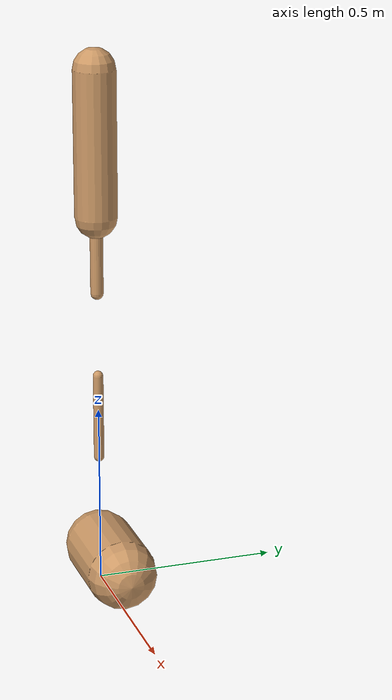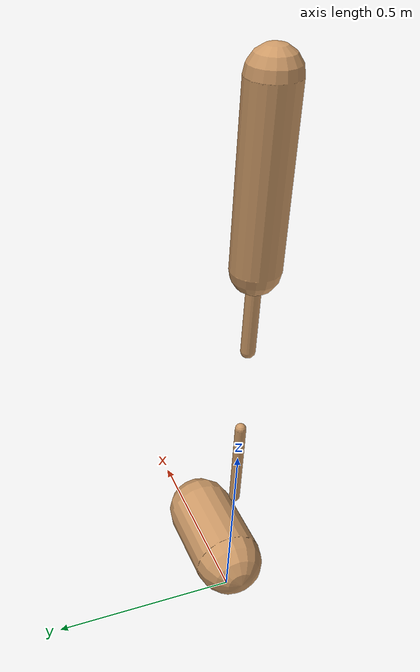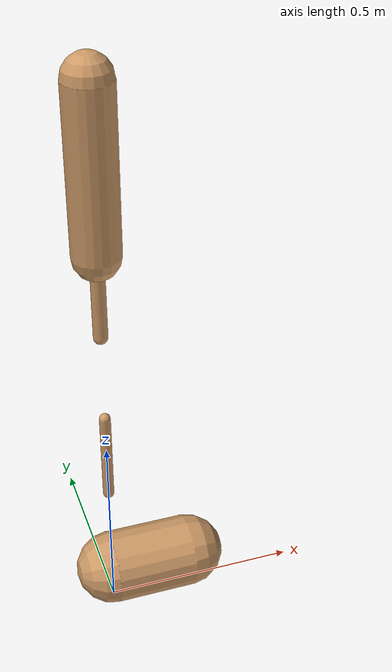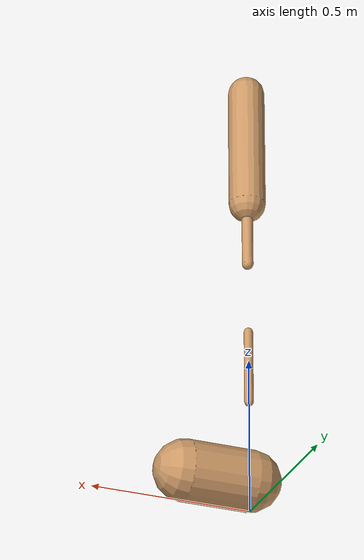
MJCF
<mujoco model="walker2d">
  <compiler angle="degree" coordinate="global" inertiafromgeom="true" />
  <default>
    <joint armature="0.01" damping=".1" limited="true" />
    <geom conaffinity="0" condim="3" contype="1" density="1000" friction="0.8 .1 .1" rgba="0.8 0.6 .4 1" />
  </default>
  <option integrator="RK4" timestep="0.002" />
  <worldbody>

    <body name="torso" pos="0 0 -0.5002291466418785">
      <joint armature="0" axis="1 0 0" damping="0" limited="false" name="ignorex" pos="0 0 0" stiffness="0" type="slide" />
      <joint armature="0" axis="0 0 1" damping="0" limited="false" name="ignorez" pos="0 0 0" ref="1.25" stiffness="0" type="slide" />
      <joint armature="0" axis="0 1 0" damping="0" limited="false" name="ignorey" pos="0 0 0" stiffness="0" type="hinge" />
      <geom fromto="0 0 1.45 0 0 1.05" name="torso_geom" size="0.05780219058891831" type="capsule" />
      <body name="thigh">
        <joint axis="0 -1 0" name="thigh_joint" pos="0 0 1.05" range="-150 0" type="hinge" />
        <geom fromto="0.0 0.0 1.05 0.0 0.0 0.8369506484093109" name="thigh_geom" size="0.01759238343487704" type="capsule" />
        <body name="leg" pos="0.0 0.0 0.2369506484093109">
          <joint axis="0 -1 0" name="leg_joint" pos="0 0 0.6" range="-150 0" type="hinge" />
          <geom fromto="0.0 0.0 0.6 0.0 0.0 0.36327849823256764" name="leg_geom" size="0.014073906747901632" type="capsule" />
          <body name="foot" pos="0.0 0.0 0.26327849823256766">
            <joint axis="0 -1 0" name="foot_joint" pos="0 0 0.1" range="-45 45" type="hinge" />
            <geom fromto="-0.0 0.0 0.1 0.20892047386464185 0.0 0.1" name="foot_geom" size="0.0954037887487521" type="capsule" />
          </body>
        </body>
      </body>

      <body name="thigh_left">
        <joint axis="0 -1 0" name="thigh_left_joint" pos="0 0 1.05" range="-150 0" type="hinge" />
        <geom fromto="0.0 0.0 1.05 0.0 0.0 0.8369506484093109" name="thigh_left_geom" rgba=".7 .3 .6 1" size="0.01759238343487704" type="capsule" />
        <body name="leg_left" pos="0.0 0.0 0.2369506484093109">
          <joint axis="0 -1 0" name="leg_left_joint" pos="0 0 0.6" range="-150 0" type="hinge" />
          <geom fromto="0.0 0.0 0.6 0.0 0.0 0.36327849823256764" name="leg_left_geom" rgba=".7 .3 .6 1" size="0.014073906747901632" type="capsule" />
          <body name="foot_left" pos="0.0 0.0 0.26327849823256766">
            <joint axis="0 -1 0" name="foot_left_joint" pos="0 0 0.1" range="-45 45" type="hinge" />
            <geom fromto="-0.0 0.0 0.1 0.20892047386464185 0.0 0.1" name="foot_left_geom" rgba=".7 .3 .6 1" size="0.0954037887487521" type="capsule" />
          </body>
        </body>
      </body>
    </body>
  </worldbody>
  <actuator>

    <motor ctrllimited="true" ctrlrange="-1.0 1.0" gear="100" joint="thigh_joint" />
    <motor ctrllimited="true" ctrlrange="-1.0 1.0" gear="100" joint="leg_joint" />
    <motor ctrllimited="true" ctrlrange="-1.0 1.0" gear="100" joint="foot_joint" />
    <motor ctrllimited="true" ctrlrange="-1.0 1.0" gear="100" joint="thigh_left_joint" />
    <motor ctrllimited="true" ctrlrange="-1.0 1.0" gear="100" joint="leg_left_joint" />
    <motor ctrllimited="true" ctrlrange="-1.0 1.0" gear="100" joint="foot_left_joint" />

  </actuator>
</mujoco>
